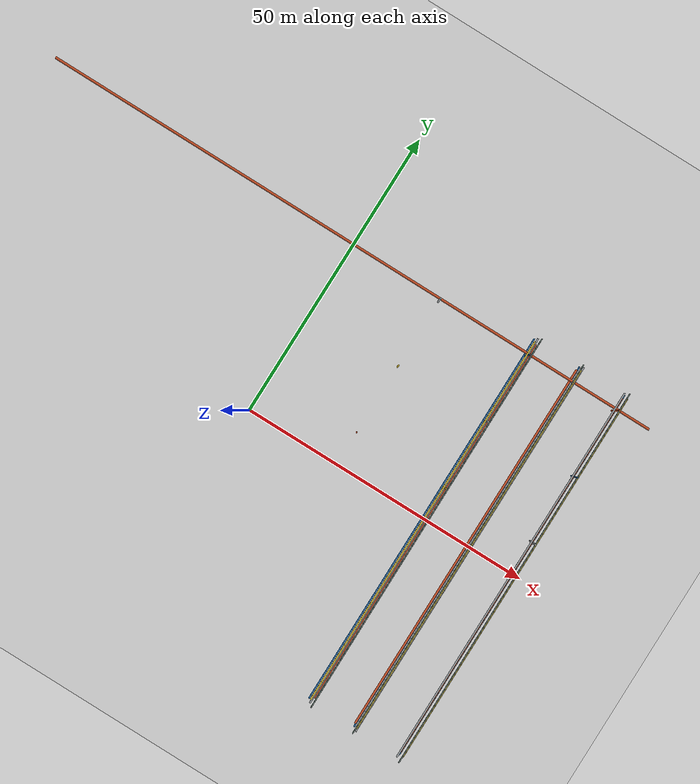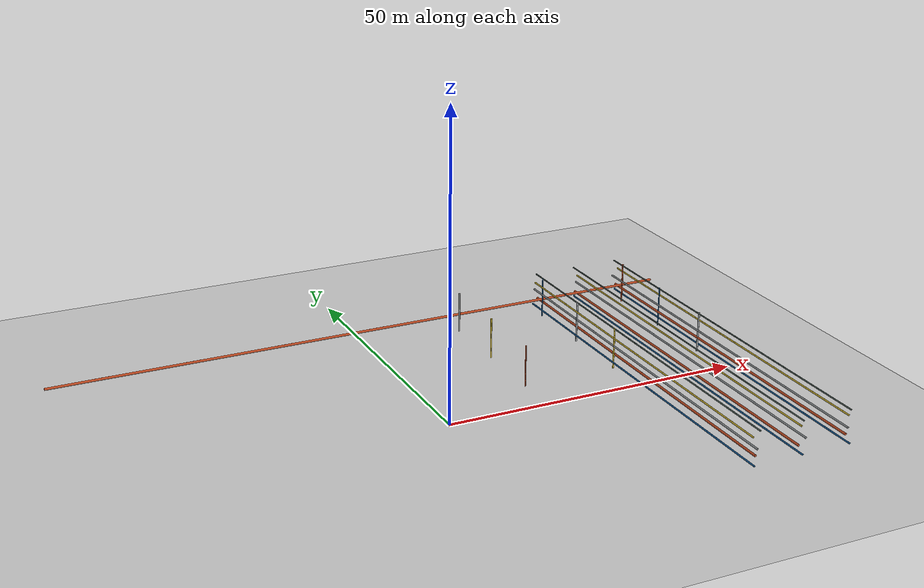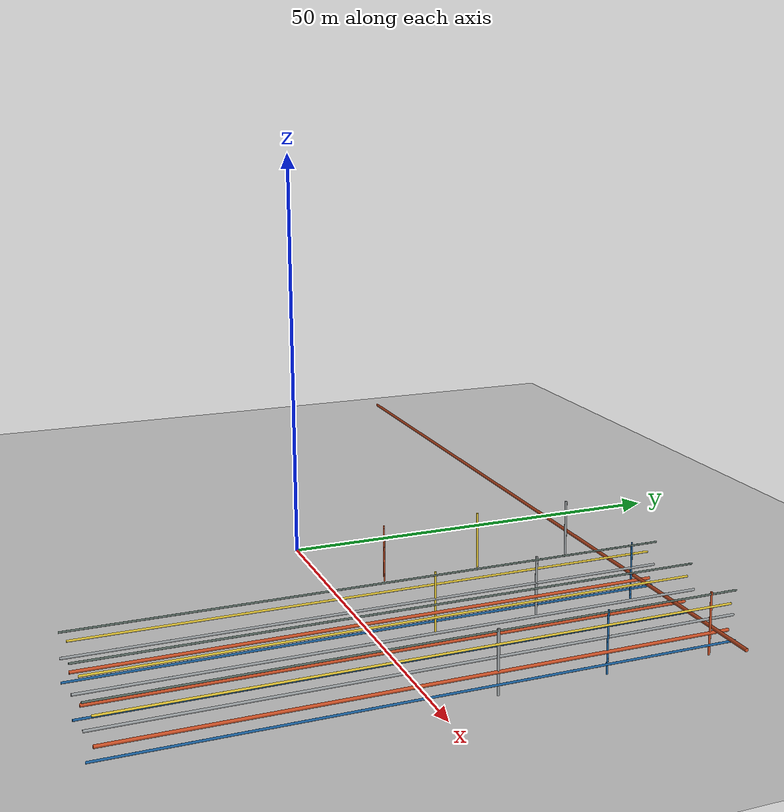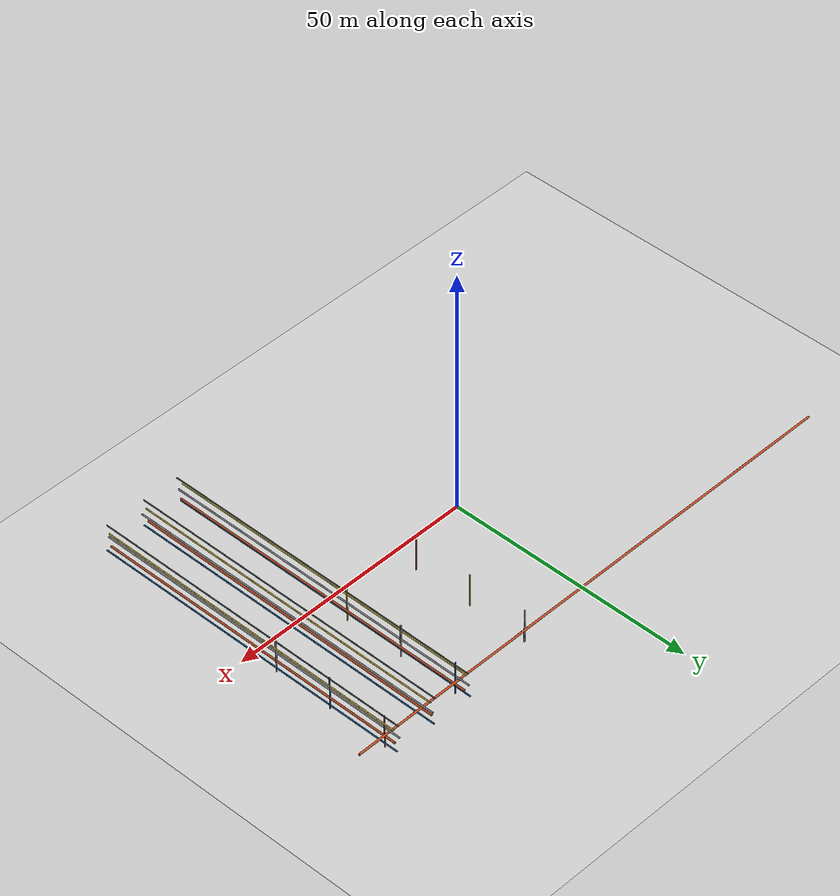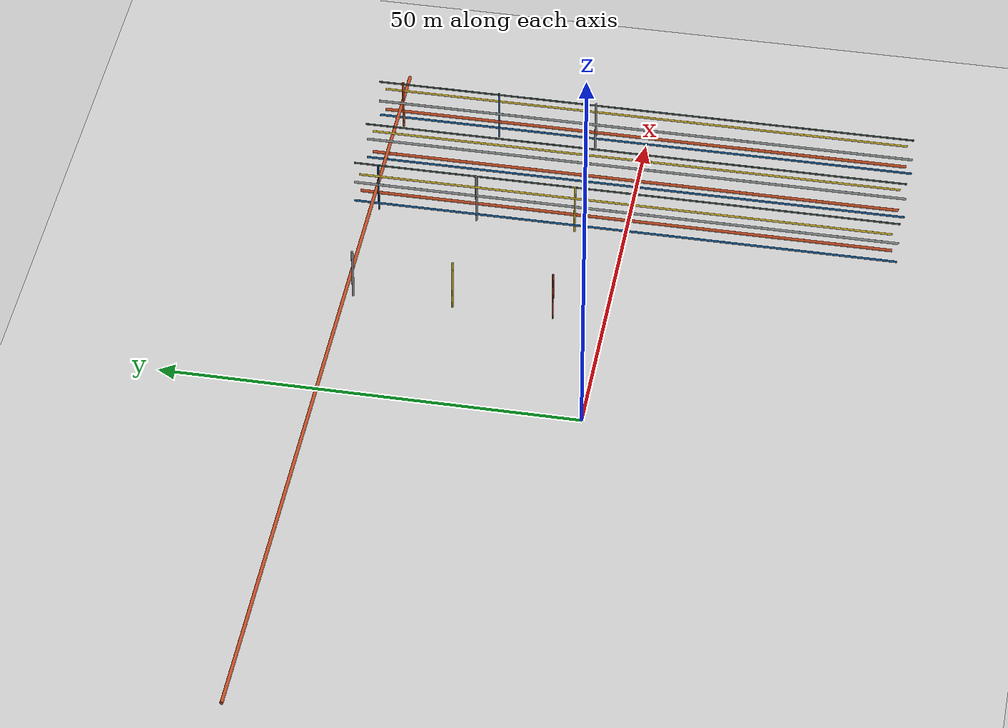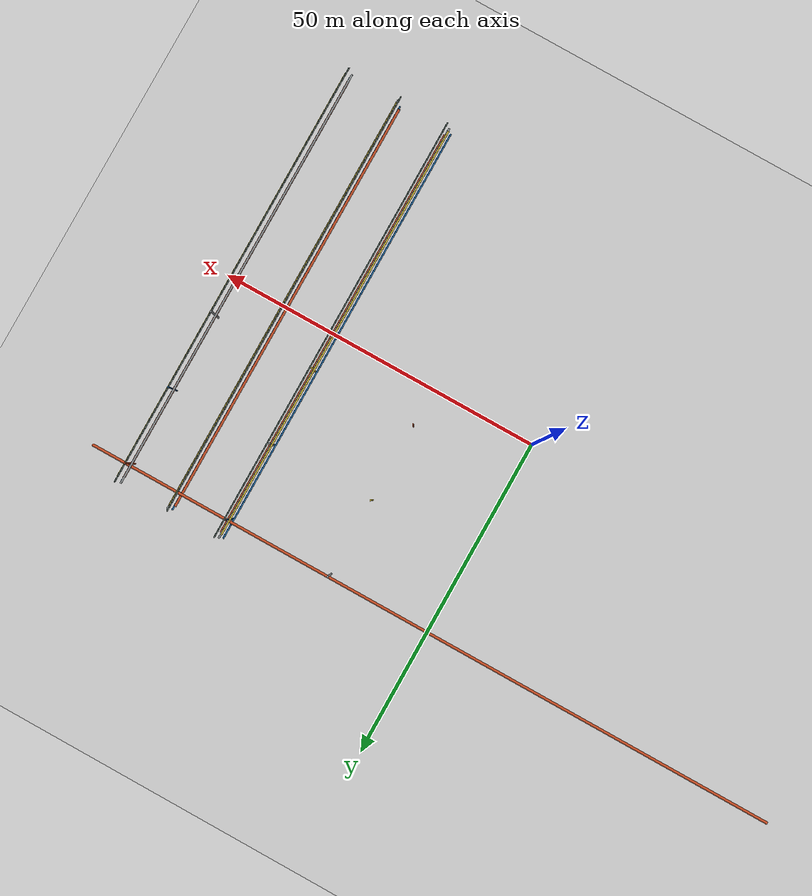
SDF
<sdf version="1.6">
 <world name="default">
  <include><uri>model://sun</uri></include>
  <include><uri>model://ground_plane</uri></include>
  <model name="dense_interwoven_pipe_grid">
   <static>true</static>
   <link name="x_pipe_r09_l2">
    <pose>0 30.32 3.65 0 1.5708 0</pose>
    <collision name="collision">
     <geometry><cylinder><radius>0.200</radius><length>108.00</length></cylinder></geometry>
    </collision>
    <visual name="visual">
     <geometry><cylinder><radius>0.200</radius><length>108.00</length></cylinder></geometry>
     <material><ambient>0.45 0.17 0.08 1</ambient><diffuse>0.77 0.30 0.14 1</diffuse></material>
    </visual>
   </link>
   <link name="y_pipe_c09_l0">
    <pose>31.72 0 1.90 1.5708 0 0</pose>
    <collision name="collision">
     <geometry><cylinder><radius>0.120</radius><length>66.00</length></cylinder></geometry>
    </collision>
    <visual name="visual">
     <geometry><cylinder><radius>0.120</radius><length>66.00</length></cylinder></geometry>
     <material><ambient>0.05 0.22 0.36 1</ambient><diffuse>0.10 0.38 0.62 1</diffuse></material>
    </visual>
   </link>
   <link name="y_pipe_c09_l1">
    <pose>32.28 0 3.10 1.5708 0 0</pose>
    <collision name="collision">
     <geometry><cylinder><radius>0.180</radius><length>64.50</length></cylinder></geometry>
    </collision>
    <visual name="visual">
     <geometry><cylinder><radius>0.180</radius><length>64.50</length></cylinder></geometry>
     <material><ambient>0.45 0.17 0.08 1</ambient><diffuse>0.77 0.30 0.14 1</diffuse></material>
    </visual>
   </link>
   <link name="y_pipe_c09_l2">
    <pose>32.00 0 4.55 1.5708 0 0</pose>
    <collision name="collision">
     <geometry><cylinder><radius>0.140</radius><length>66.00</length></cylinder></geometry>
    </collision>
    <visual name="visual">
     <geometry><cylinder><radius>0.140</radius><length>66.00</length></cylinder></geometry>
     <material><ambient>0.34 0.35 0.36 1</ambient><diffuse>0.58 0.60 0.61 1</diffuse></material>
    </visual>
   </link>
   <link name="y_pipe_c09_l3">
    <pose>31.72 0 6.10 1.5708 0 0</pose>
    <collision name="collision">
     <geometry><cylinder><radius>0.120</radius><length>64.50</length></cylinder></geometry>
    </collision>
    <visual name="visual">
     <geometry><cylinder><radius>0.120</radius><length>64.50</length></cylinder></geometry>
     <material><ambient>0.48 0.42 0.12 1</ambient><diffuse>0.86 0.75 0.20 1</diffuse></material>
    </visual>
   </link>
   <link name="y_pipe_c09_l4">
    <pose>32.28 0 7.35 1.5708 0 0</pose>
    <collision name="collision">
     <geometry><cylinder><radius>0.100</radius><length>66.00</length></cylinder></geometry>
    </collision>
    <visual name="visual">
     <geometry><cylinder><radius>0.100</radius><length>66.00</length></cylinder></geometry>
     <material><ambient>0.20 0.24 0.23 1</ambient><diffuse>0.36 0.43 0.40 1</diffuse></material>
    </visual>
   </link>
   <link name="y_pipe_c10_l0">
    <pose>40.00 0 1.90 1.5708 0 0</pose>
    <collision name="collision">
     <geometry><cylinder><radius>0.120</radius><length>66.00</length></cylinder></geometry>
    </collision>
    <visual name="visual">
     <geometry><cylinder><radius>0.120</radius><length>66.00</length></cylinder></geometry>
     <material><ambient>0.05 0.22 0.36 1</ambient><diffuse>0.10 0.38 0.62 1</diffuse></material>
    </visual>
   </link>
   <link name="y_pipe_c10_l1">
    <pose>39.72 0 3.10 1.5708 0 0</pose>
    <collision name="collision">
     <geometry><cylinder><radius>0.180</radius><length>64.50</length></cylinder></geometry>
    </collision>
    <visual name="visual">
     <geometry><cylinder><radius>0.180</radius><length>64.50</length></cylinder></geometry>
     <material><ambient>0.45 0.17 0.08 1</ambient><diffuse>0.77 0.30 0.14 1</diffuse></material>
    </visual>
   </link>
   <link name="y_pipe_c10_l2">
    <pose>40.28 0 4.55 1.5708 0 0</pose>
    <collision name="collision">
     <geometry><cylinder><radius>0.140</radius><length>66.00</length></cylinder></geometry>
    </collision>
    <visual name="visual">
     <geometry><cylinder><radius>0.140</radius><length>66.00</length></cylinder></geometry>
     <material><ambient>0.34 0.35 0.36 1</ambient><diffuse>0.58 0.60 0.61 1</diffuse></material>
    </visual>
   </link>
   <link name="y_pipe_c10_l3">
    <pose>40.00 0 6.10 1.5708 0 0</pose>
    <collision name="collision">
     <geometry><cylinder><radius>0.120</radius><length>64.50</length></cylinder></geometry>
    </collision>
    <visual name="visual">
     <geometry><cylinder><radius>0.120</radius><length>64.50</length></cylinder></geometry>
     <material><ambient>0.48 0.42 0.12 1</ambient><diffuse>0.86 0.75 0.20 1</diffuse></material>
    </visual>
   </link>
   <link name="y_pipe_c10_l4">
    <pose>39.72 0 7.35 1.5708 0 0</pose>
    <collision name="collision">
     <geometry><cylinder><radius>0.100</radius><length>66.00</length></cylinder></geometry>
    </collision>
    <visual name="visual">
     <geometry><cylinder><radius>0.100</radius><length>66.00</length></cylinder></geometry>
     <material><ambient>0.20 0.24 0.23 1</ambient><diffuse>0.36 0.43 0.40 1</diffuse></material>
    </visual>
   </link>
   <link name="y_pipe_c11_l0">
    <pose>48.28 0 1.90 1.5708 0 0</pose>
    <collision name="collision">
     <geometry><cylinder><radius>0.120</radius><length>66.00</length></cylinder></geometry>
    </collision>
    <visual name="visual">
     <geometry><cylinder><radius>0.120</radius><length>66.00</length></cylinder></geometry>
     <material><ambient>0.05 0.22 0.36 1</ambient><diffuse>0.10 0.38 0.62 1</diffuse></material>
    </visual>
   </link>
   <link name="y_pipe_c11_l1">
    <pose>48.00 0 3.10 1.5708 0 0</pose>
    <collision name="collision">
     <geometry><cylinder><radius>0.180</radius><length>64.50</length></cylinder></geometry>
    </collision>
    <visual name="visual">
     <geometry><cylinder><radius>0.180</radius><length>64.50</length></cylinder></geometry>
     <material><ambient>0.45 0.17 0.08 1</ambient><diffuse>0.77 0.30 0.14 1</diffuse></material>
    </visual>
   </link>
   <link name="y_pipe_c11_l2">
    <pose>47.72 0 4.55 1.5708 0 0</pose>
    <collision name="collision">
     <geometry><cylinder><radius>0.140</radius><length>66.00</length></cylinder></geometry>
    </collision>
    <visual name="visual">
     <geometry><cylinder><radius>0.140</radius><length>66.00</length></cylinder></geometry>
     <material><ambient>0.34 0.35 0.36 1</ambient><diffuse>0.58 0.60 0.61 1</diffuse></material>
    </visual>
   </link>
   <link name="y_pipe_c11_l3">
    <pose>48.28 0 6.10 1.5708 0 0</pose>
    <collision name="collision">
     <geometry><cylinder><radius>0.120</radius><length>64.50</length></cylinder></geometry>
    </collision>
    <visual name="visual">
     <geometry><cylinder><radius>0.120</radius><length>64.50</length></cylinder></geometry>
     <material><ambient>0.48 0.42 0.12 1</ambient><diffuse>0.86 0.75 0.20 1</diffuse></material>
    </visual>
   </link>
   <link name="y_pipe_c11_l4">
    <pose>48.00 0 7.35 1.5708 0 0</pose>
    <collision name="collision">
     <geometry><cylinder><radius>0.100</radius><length>66.00</length></cylinder></geometry>
    </collision>
    <visual name="visual">
     <geometry><cylinder><radius>0.100</radius><length>66.00</length></cylinder></geometry>
     <material><ambient>0.20 0.24 0.23 1</ambient><diffuse>0.36 0.43 0.40 1</diffuse></material>
    </visual>
   </link>
   <link name="riser_03_03">
    <pose>16.0 6.0 4.15 0 0 0</pose>
    <collision name="collision">
     <geometry><cylinder><radius>0.100</radius><length>6.90</length></cylinder></geometry>
    </collision>
    <visual name="visual">
     <geometry><cylinder><radius>0.100</radius><length>6.90</length></cylinder></geometry>
     <material><ambient>0.45 0.17 0.08 1</ambient><diffuse>0.77 0.30 0.14 1</diffuse></material>
    </visual>
   </link>
   <link name="riser_03_04">
    <pose>16.0 18.0 4.15 0 0 0</pose>
    <collision name="collision">
     <geometry><cylinder><radius>0.120</radius><length>6.90</length></cylinder></geometry>
    </collision>
    <visual name="visual">
     <geometry><cylinder><radius>0.120</radius><length>6.90</length></cylinder></geometry>
     <material><ambient>0.48 0.42 0.12 1</ambient><diffuse>0.86 0.75 0.20 1</diffuse></material>
    </visual>
   </link>
   <link name="riser_03_05">
    <pose>16.0 30.0 4.15 0 0 0</pose>
    <collision name="collision">
     <geometry><cylinder><radius>0.140</radius><length>6.90</length></cylinder></geometry>
    </collision>
    <visual name="visual">
     <geometry><cylinder><radius>0.140</radius><length>6.90</length></cylinder></geometry>
     <material><ambient>0.34 0.35 0.36 1</ambient><diffuse>0.58 0.60 0.61 1</diffuse></material>
    </visual>
   </link>
   <link name="riser_04_03">
    <pose>32.0 6.0 4.15 0 0 0</pose>
    <collision name="collision">
     <geometry><cylinder><radius>0.120</radius><length>6.90</length></cylinder></geometry>
    </collision>
    <visual name="visual">
     <geometry><cylinder><radius>0.120</radius><length>6.90</length></cylinder></geometry>
     <material><ambient>0.48 0.42 0.12 1</ambient><diffuse>0.86 0.75 0.20 1</diffuse></material>
    </visual>
   </link>
   <link name="riser_04_04">
    <pose>32.0 18.0 4.15 0 0 0</pose>
    <collision name="collision">
     <geometry><cylinder><radius>0.140</radius><length>6.90</length></cylinder></geometry>
    </collision>
    <visual name="visual">
     <geometry><cylinder><radius>0.140</radius><length>6.90</length></cylinder></geometry>
     <material><ambient>0.34 0.35 0.36 1</ambient><diffuse>0.58 0.60 0.61 1</diffuse></material>
    </visual>
   </link>
   <link name="riser_04_05">
    <pose>32.0 30.0 4.15 0 0 0</pose>
    <collision name="collision">
     <geometry><cylinder><radius>0.100</radius><length>6.90</length></cylinder></geometry>
    </collision>
    <visual name="visual">
     <geometry><cylinder><radius>0.100</radius><length>6.90</length></cylinder></geometry>
     <material><ambient>0.05 0.22 0.36 1</ambient><diffuse>0.10 0.38 0.62 1</diffuse></material>
    </visual>
   </link>
   <link name="riser_05_03">
    <pose>48.0 6.0 4.15 0 0 0</pose>
    <collision name="collision">
     <geometry><cylinder><radius>0.140</radius><length>6.90</length></cylinder></geometry>
    </collision>
    <visual name="visual">
     <geometry><cylinder><radius>0.140</radius><length>6.90</length></cylinder></geometry>
     <material><ambient>0.34 0.35 0.36 1</ambient><diffuse>0.58 0.60 0.61 1</diffuse></material>
    </visual>
   </link>
   <link name="riser_05_04">
    <pose>48.0 18.0 4.15 0 0 0</pose>
    <collision name="collision">
     <geometry><cylinder><radius>0.100</radius><length>6.90</length></cylinder></geometry>
    </collision>
    <visual name="visual">
     <geometry><cylinder><radius>0.100</radius><length>6.90</length></cylinder></geometry>
     <material><ambient>0.05 0.22 0.36 1</ambient><diffuse>0.10 0.38 0.62 1</diffuse></material>
    </visual>
   </link>
   <link name="riser_05_05">
    <pose>48.0 30.0 4.15 0 0 0</pose>
    <collision name="collision">
     <geometry><cylinder><radius>0.120</radius><length>6.90</length></cylinder></geometry>
    </collision>
    <visual name="visual">
     <geometry><cylinder><radius>0.120</radius><length>6.90</length></cylinder></geometry>
     <material><ambient>0.45 0.17 0.08 1</ambient><diffuse>0.77 0.30 0.14 1</diffuse></material>
    </visual>
   </link>
  </model>
 </world>
</sdf>
